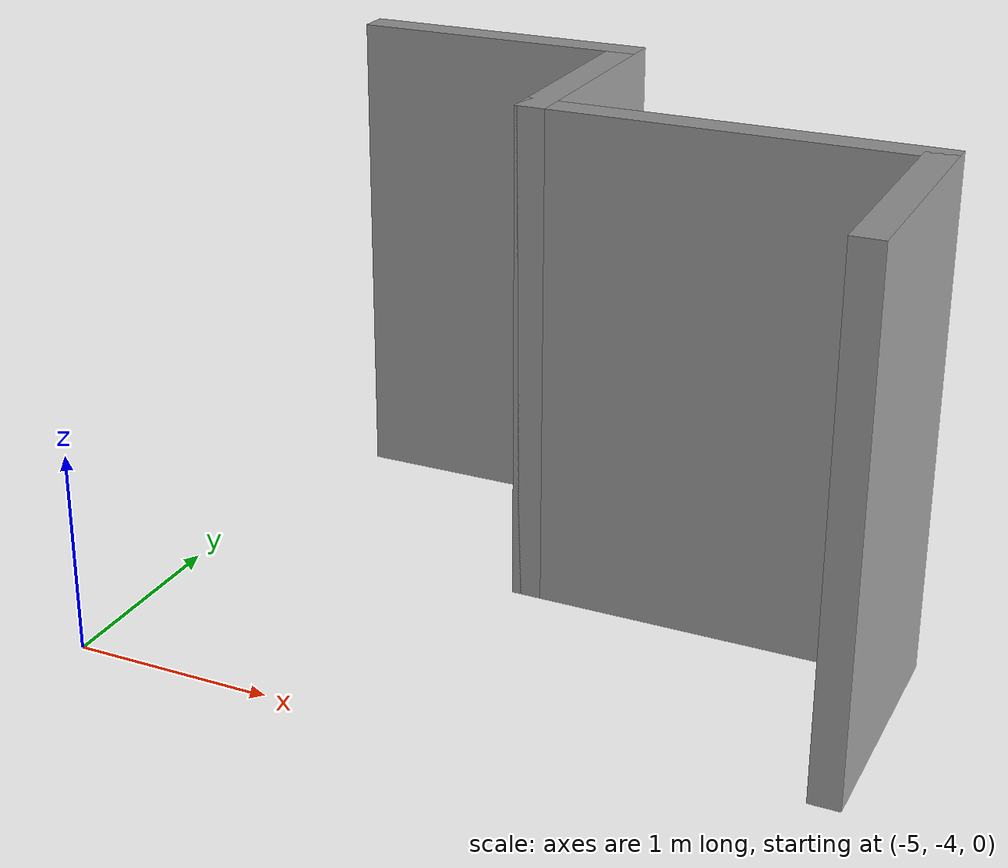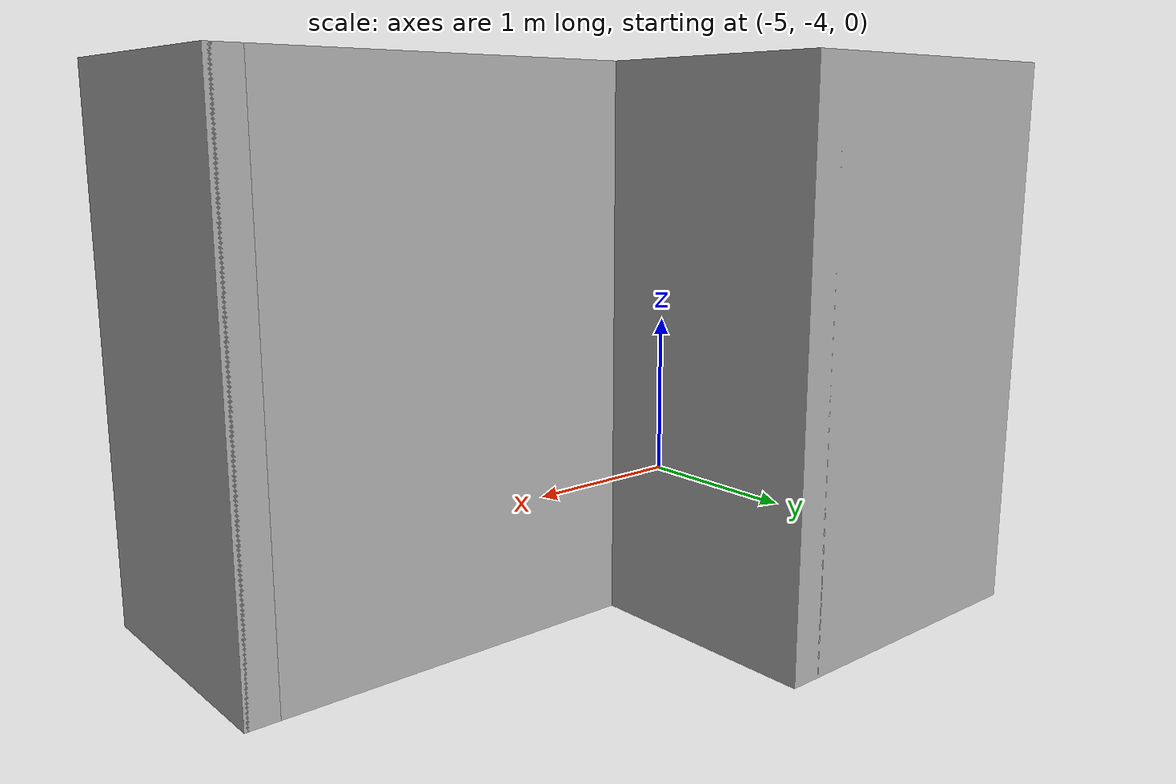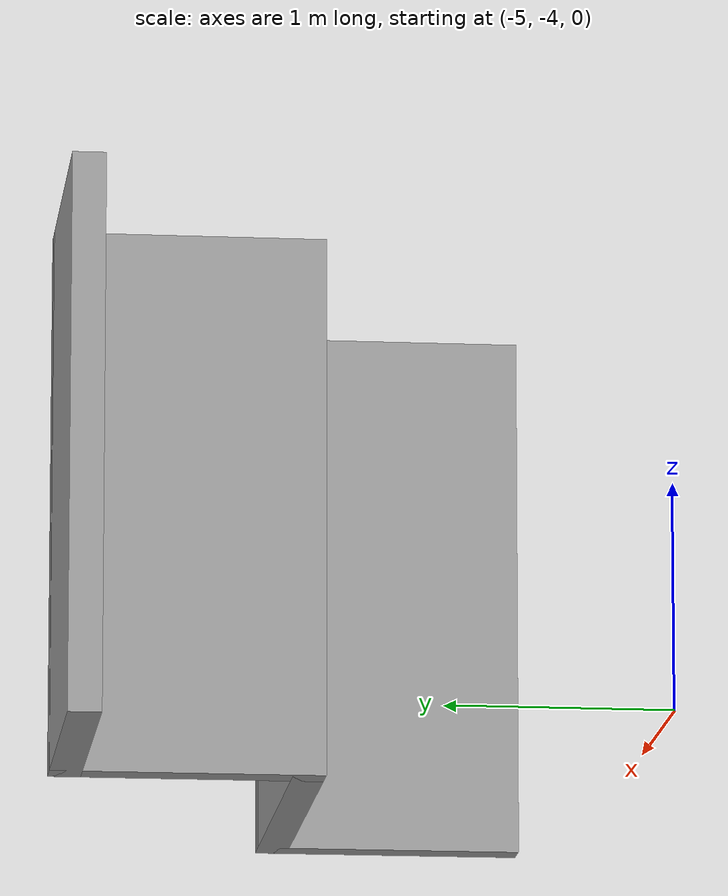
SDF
<?xml version='1.0'?>
<sdf version='1.6'>
  <model name='ex1'>
    <pose frame=''>-3.05 -2.58 0 0 -0 0</pose>
    <link name='Wall_5'>
      <collision name='Wall_5_Collision'>
        <geometry>
          <box>
            <size>1.5 0.15 2.5</size>
          </box>
        </geometry>
        <pose frame=''>0 0 1.25 0 -0 0</pose>
      </collision>
      <visual name='Wall_5_Visual'>
        <pose frame=''>0 0 1.25 0 -0 0</pose>
        <geometry>
          <box>
            <size>1.5 0.15 2.5</size>
          </box>
        </geometry>
        <material>
          <script>
            <uri>file://media/materials/scripts/gazebo.material</uri>
            <name>Gazebo/Grey</name>
          </script>
          <ambient>1 1 1 1</ambient>
        </material>
        <meta>
          <layer>0</layer>
        </meta>
      </visual>
      <pose frame=''>-0.925 1.1 0 0 -0 0</pose>
    </link>
    <link name='Wall_6'>
      <collision name='Wall_6_Collision'>
        <geometry>
          <box>
            <size>1.25 0.15 2.5</size>
          </box>
        </geometry>
        <pose frame=''>0 0 1.25 0 -0 0</pose>
      </collision>
      <visual name='Wall_6_Visual'>
        <pose frame=''>0 0 1.25 0 -0 0</pose>
        <geometry>
          <box>
            <size>1.25 0.15 2.5</size>
          </box>
        </geometry>
        <material>
          <script>
            <uri>file://media/materials/scripts/gazebo.material</uri>
            <name>Gazebo/Grey</name>
          </script>
          <ambient>1 1 1 1</ambient>
        </material>
        <meta>
          <layer>0</layer>
        </meta>
      </visual>
      <pose frame=''>-0.25 0.55 0 0 -0 -1.5708</pose>
    </link>
    <link name='Wall_7'>
      <collision name='Wall_7_Collision'>
        <geometry>
          <box>
            <size>2 0.15 2.5</size>
          </box>
        </geometry>
        <pose frame=''>0 0 1.25 0 -0 0</pose>
      </collision>
      <visual name='Wall_7_Visual'>
        <pose frame=''>0 0 1.25 0 -0 0</pose>
        <geometry>
          <box>
            <size>2 0.15 2.5</size>
          </box>
        </geometry>
        <material>
          <script>
            <uri>file://media/materials/scripts/gazebo.material</uri>
            <name>Gazebo/Grey</name>
          </script>
          <ambient>1 1 1 1</ambient>
        </material>
        <meta>
          <layer>0</layer>
        </meta>
      </visual>
      <pose frame=''>0.675 0 0 0 -0 0</pose>
    </link>
    <link name='Wall_8'>
      <collision name='Wall_8_Collision'>
        <geometry>
          <box>
            <size>1.25 0.15 2.5</size>
          </box>
        </geometry>
        <pose frame=''>0 0 1.25 0 -0 0</pose>
      </collision>
      <visual name='Wall_8_Visual'>
        <pose frame=''>0 0 1.25 0 -0 0</pose>
        <geometry>
          <box>
            <size>1.25 0.15 2.5</size>
          </box>
        </geometry>
        <material>
          <script>
            <uri>file://media/materials/scripts/gazebo.material</uri>
            <name>Gazebo/Grey</name>
          </script>
          <ambient>1 1 1 1</ambient>
        </material>
        <meta>
          <layer>0</layer>
        </meta>
      </visual>
      <pose frame=''>1.6 -0.55 0 0 -0 -1.5708</pose>
    </link>
    <static>1</static>
  </model>
</sdf>
